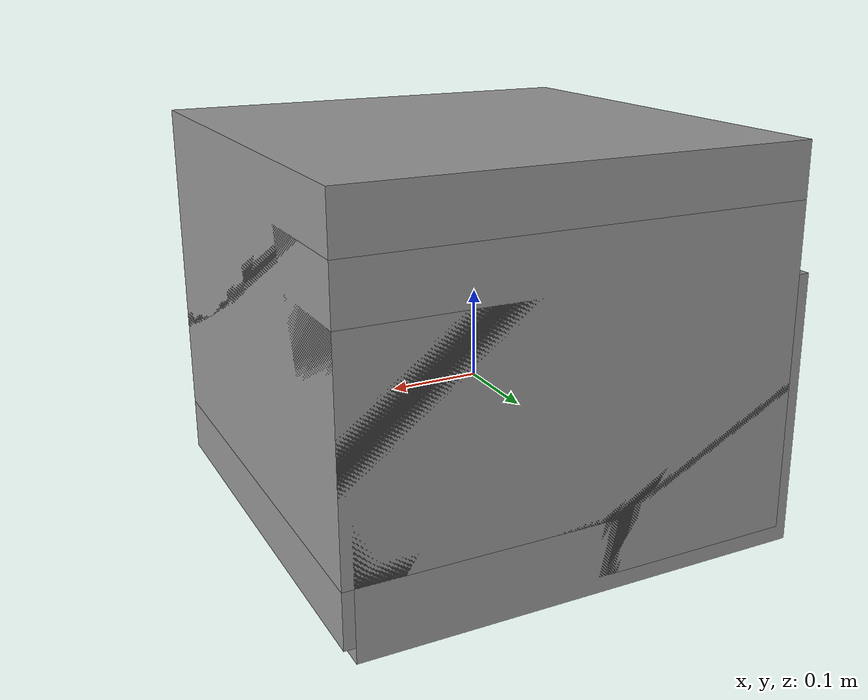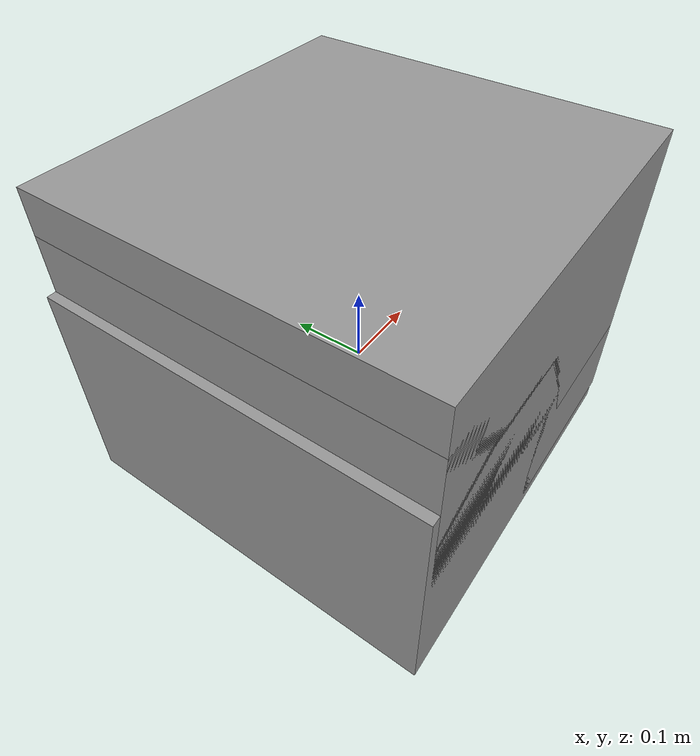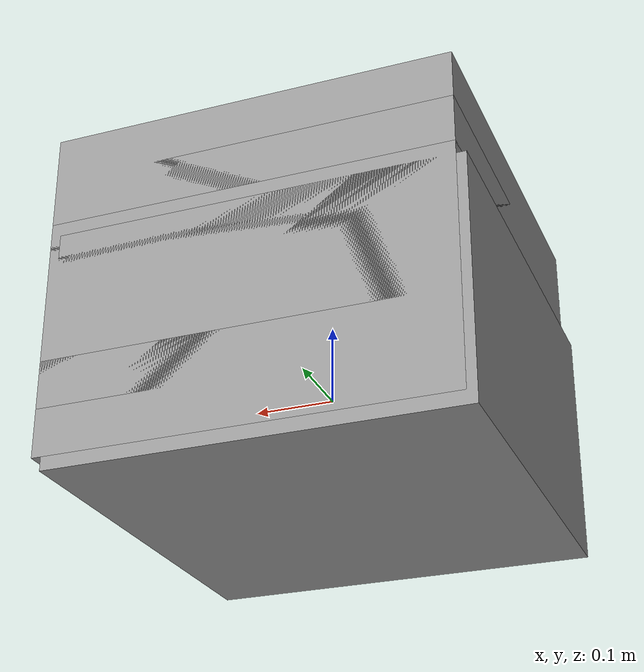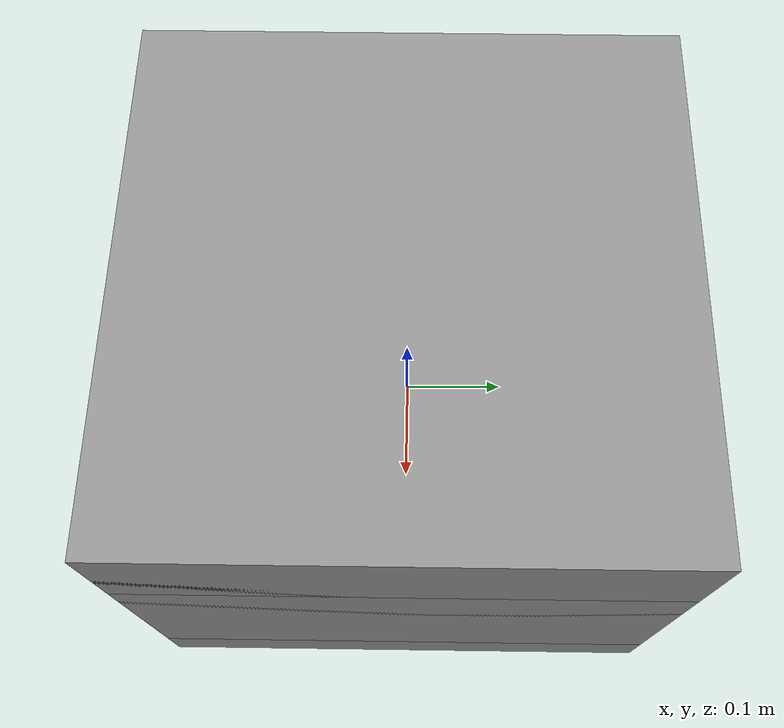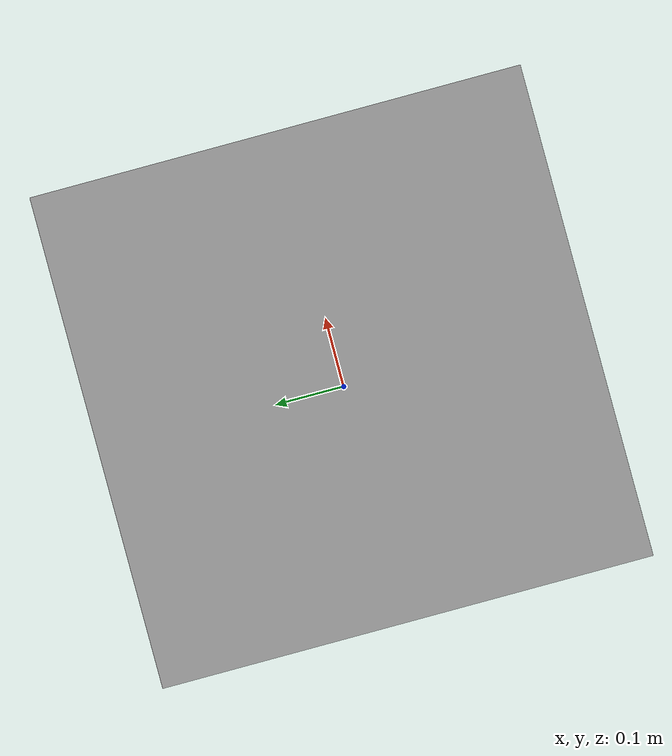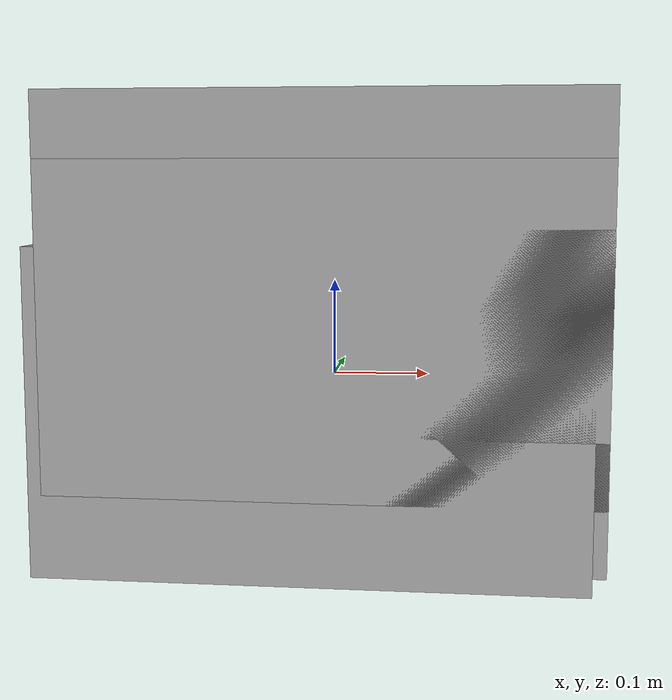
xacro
<?xml version="1.0"?>
<robot name="ususama" xmlns:xacro="http://ros.org/wiki/xacro">
  <xacro:include filename="$(find ususama_description)/urdf/ususama.xacro" />
  <xacro:include filename="$(find ususama_description)/urdf/ususama.ros2_control.xacro" />

  <link name="world"/>

  <xacro:ususama parent="world">
    <origin xyz="0 0 0" rpy="0 0 0" />
  </xacro:ususama>

  <xacro:ususama_ros2_control name="ususama_ros2_control" />
</robot>

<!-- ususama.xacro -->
<robot xmlns:xacro="http://ros.org/wiki/xacro">

<!-- Import Rviz colors -->
<xacro:include filename="$(find ususama_description)/urdf/ususama.material.xacro" />

<xacro:macro name="ususama" params="parent *origin">
  <joint name="origin_to_link1" type="fixed">
    <xacro:insert_block name="origin" />
    <parent link="${parent}" />
    <child link="link1" />
    <axis xyz="0 0 1" />
  </joint>

 <!-- Link 1 -->
  <link name="link1">
    <visual>
      <origin xyz="0 0 0" rpy="0 0 0"/>
      <geometry>
        <box size="0.5 0.5 0.3"/>
      </geometry>
      <material name="grey"/>
    </visual>

    <collision>
      <origin xyz="0 0 0" rpy="0 0 0"/>
      <geometry>
        <box size="0.5 0.5 0.3"/>
      </geometry>
    </collision>

    <inertial>
      <origin xyz="0 0 0" rpy="0 0 0"/>
      <mass value="7.9119962e-02" />
      <inertia ixx="1.2505234e-05" ixy="0.0" ixz="-1.7855208e-07"
               iyy="2.1898364e-05" iyz="0.0"
               izz="1.9267361e-05" />
    </inertial>
  </link>

  <!-- Joint 1 -->
  <joint name="joint1" type="continuous">
    <parent link="link1"/>
    <child link="link2"/>
    <origin xyz="0.012 0.0 0.017" rpy="0 0 0"/>
    <axis xyz="0 0 1"/>
    <!--limit velocity="4.8" effort="1" lower="-2.82743338823" upper="2.82743338823" /-->
  </joint>

  <!--  Link 2 -->
  <link name="link2">
    <visual>
      <origin xyz="0 0 0" rpy="0 0 0"/>
      <geometry>
        <box size="0.5 0.5 0.3"/>
      </geometry>
      <material name="grey"/>
    </visual>

    <collision>
      <origin xyz="0 0 0" rpy="0 0 0"/>
      <geometry>
        <box size="0.5 0.5 0.3"/>
      </geometry>
    </collision>

     <inertial>
      <origin xyz="-3.0184870e-04 5.4043684e-04 0.047433464e-02" />
      <mass value="9.8406837e-02" />
      <inertia ixx="3.4543422e-05" ixy="-1.6031095e-08" ixz="-3.8375155e-07"
               iyy="3.2689329e-05" iyz="2.8511935e-08"
               izz="1.8850320e-05" />
    </inertial>
  </link>

  <!--  Joint 2 -->
  <joint name="joint2" type="continuous">
    <parent link="link2"/>
    <child link="link3"/>
    <origin xyz="0.0 0.0 0.0595" rpy="0 0 0"/>
    <axis xyz="0 1 0"/>
    <!--limit velocity="4.8" effort="1" lower="-1.79070781255" upper="1.57079632679" /-->
  </joint>

  <!--  Link 3 -->
  <link name="link3">
    <visual>
      <origin xyz="0 0 0" rpy="0 0 0"/>
      <geometry>
        <box size="0.5 0.5 0.3"/>
      </geometry>
      <material name="grey"/>
    </visual>

    <collision>
      <origin xyz="0 0 0" rpy="0 0 0"/>
      <geometry>
        <box size="0.5 0.5 0.3"/>
      </geometry>
    </collision>

    <inertial>
      <origin xyz="1.0308393e-02 3.7743363e-04 1.0170197e-01" />
      <mass value="1.3850917e-01" />
      <inertia ixx="3.3055381e-04" ixy="-9.7940978e-08" ixz="-3.8505711e-05"
               iyy="3.4290447e-04" iyz="-1.5717516e-06"
               izz="6.0346498e-05" />
    </inertial>
  </link>

  <!--  Joint 3 -->
  <joint name="joint3" type="continuous">
    <parent link="link3"/>
    <child link="link4"/>
    <origin xyz="0.0 0.0 0.0595" rpy="0 0 0"/>
    <axis xyz="0 1 0"/>
    <!--limit velocity="4.8" effort="1" lower="-1.79070781255" upper="1.57079632679" /-->
  </joint>

  <!--  Link 4 -->
  <link name="link4">
    <visual>
      <origin xyz="0 0 0" rpy="0 0 0"/>
      <geometry>
        <box size="0.5 0.5 0.3"/>
      </geometry>
      <material name="grey"/>
    </visual>

    <collision>
      <origin xyz="0 0 0" rpy="0 0 0"/>
      <geometry>
        <box size="0.5 0.5 0.3"/>
      </geometry>
    </collision>

    <inertial>
      <origin xyz="1.0308393e-02 3.7743363e-04 1.0170197e-01" />
      <mass value="1.3850917e-01" />
      <inertia ixx="3.3055381e-04" ixy="-9.7940978e-08" ixz="-3.8505711e-05"
               iyy="3.4290447e-04" iyz="-1.5717516e-06"
               izz="6.0346498e-05" />
    </inertial>
  </link>
</xacro:macro>
</robot>
